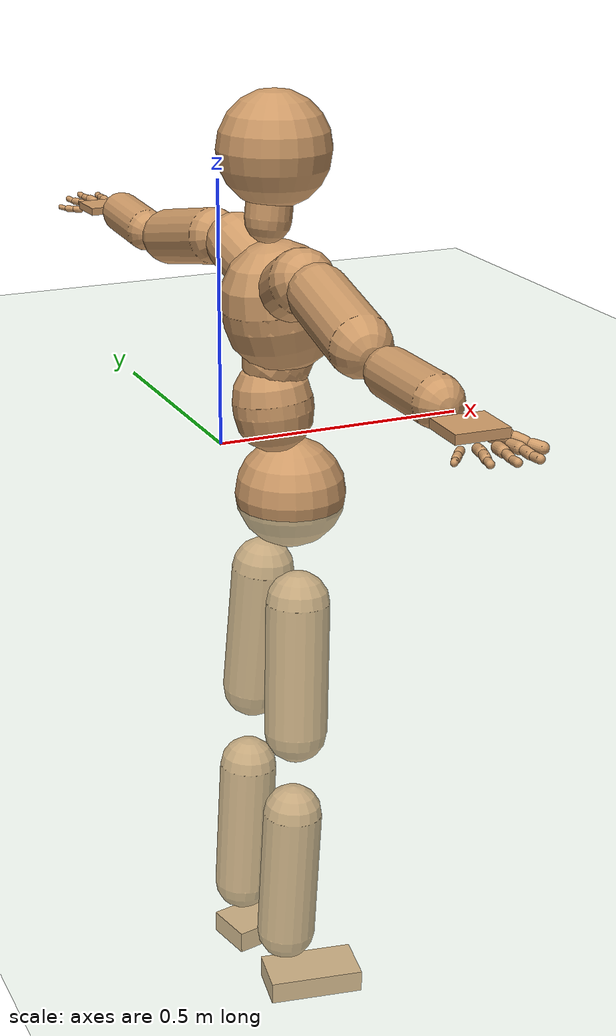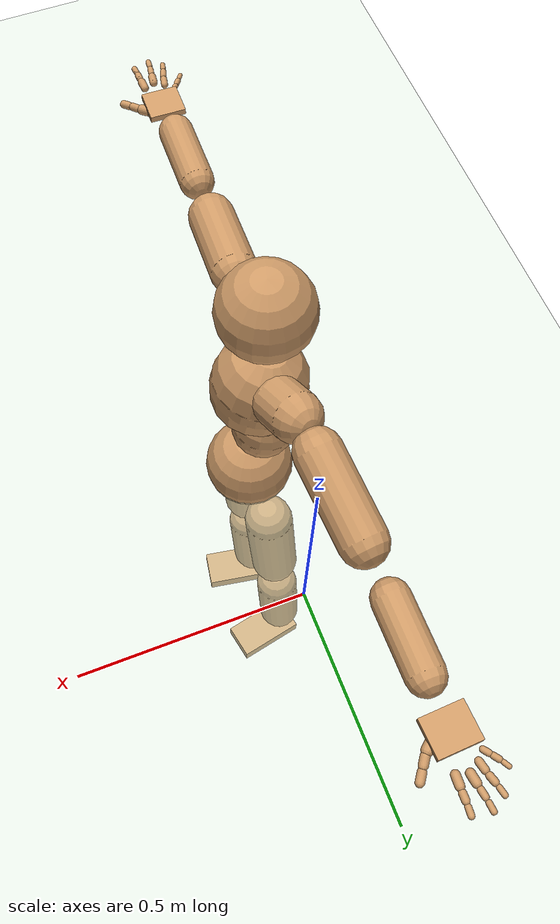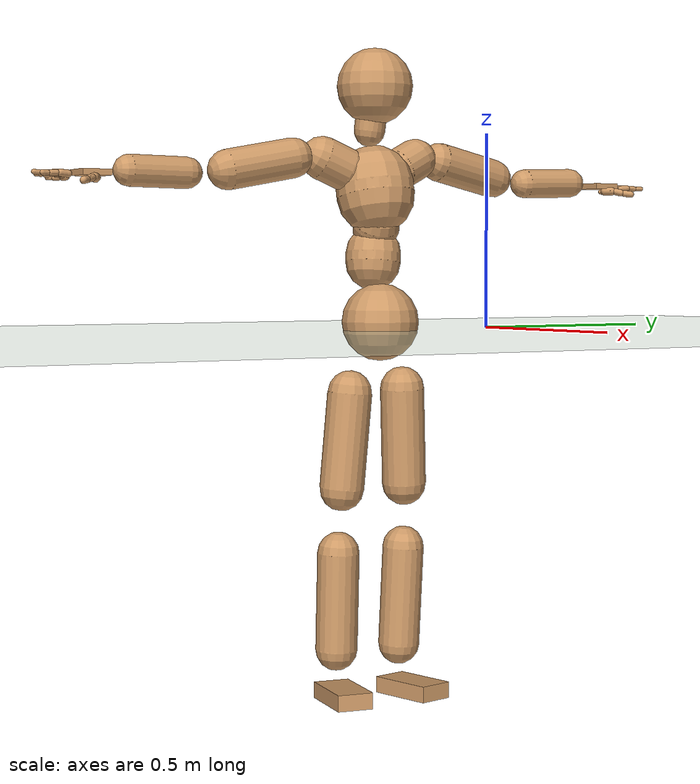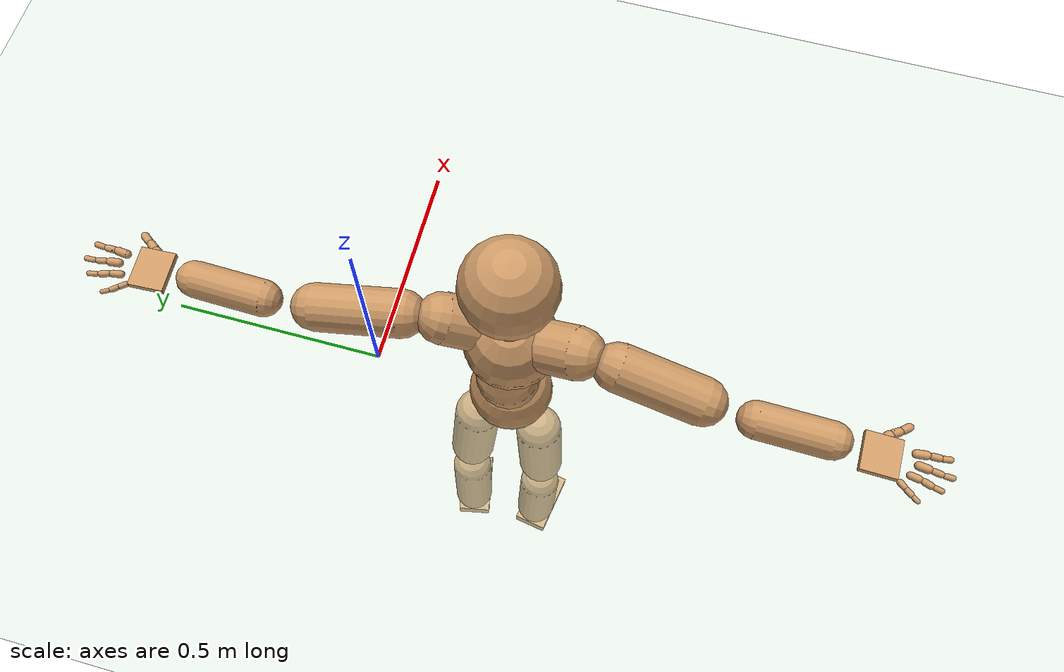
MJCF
<mujoco model="humanoid">
  <compiler coordinate="local" angle="radian"/>
  <default>
    <joint damping="0.0" armature="0.01" stiffness="0.0" limited="true"/>
    <geom conaffinity="1" condim="3" contype="7" margin="0.001" rgba="0.8 0.6 .4 1"/>
  </default>
  <asset>
    <texture type="skybox" builtin="gradient" rgb1=".4 .5 .6" rgb2="0 0 0" width="100" height="100"/>
    <texture builtin="flat" height="1278" mark="cross" markrgb="1 1 1" name="texgeom" random="0.01" rgb1="0.8 0.6 0.4" rgb2="0.8 0.6 0.4" type="cube" width="127"/>
    <texture builtin="checker" height="100" name="texplane" rgb1="0 0 0" rgb2="0.8 0.8 0.8" type="2d" width="100"/>
    <material name="MatPlane" reflectance="0.5" shininess="1" specular="1" texrepeat="60 60" texture="texplane"/>
    <material name="geom" texture="texgeom" texuniform="true"/>
  </asset>
  <worldbody>
    <light cutoff="100" diffuse="1 1 1" dir="-0 0 -1.3" directional="true" exponent="1" pos="0 0 1.3" specular=".1 .1 .1"/>
    <geom conaffinity="1" condim="3" name="floor" pos="0 0 0" rgba="0.8 0.9 0.8 1" size="100 100 .2" type="plane" material="MatPlane"/>
    <body name="Pelvis" pos="0.0004 -0.3257 0.0185">
      <freejoint name="Pelvis"/>
      <geom type="sphere" contype="1" conaffinity="1" density="500" size="0.0971" pos="0.0000 0.0000 0.0000" name="Pelvis"/>
      <body name="L_Hip" pos="-0.0147 0.0725 -0.0896">
        <joint name="L_Hip_x" type="hinge" pos="0 0 0" axis="1 0 0" stiffness="800" damping="80" armature="0.02" range="-180.0000 180.0000"/>
        <joint name="L_Hip_y" type="hinge" pos="0 0 0" axis="0 1 0" stiffness="800" damping="80" armature="0.02" range="-180.0000 180.0000"/>
        <joint name="L_Hip_z" type="hinge" pos="0 0 0" axis="0 0 1" stiffness="800" damping="80" armature="0.02" range="-180.0000 180.0000"/>
        <geom type="capsule" contype="1" conaffinity="1" density="500" fromto="-0.0047 0.0051 -0.0813 -0.0189 0.0203 -0.3252" size="0.0562" name="L_Hip"/>
        <body name="L_Knee" pos="-0.0237 0.0253 -0.4065">
          <joint name="L_Knee_x" type="hinge" pos="0 0 0" axis="1 0 0" stiffness="800" damping="80" armature="0.02" range="-180.0000 180.0000"/>
          <joint name="L_Knee_y" type="hinge" pos="0 0 0" axis="0 1 0" stiffness="800" damping="80" armature="0.02" range="-180.0000 180.0000"/>
          <joint name="L_Knee_z" type="hinge" pos="0 0 0" axis="0 0 1" stiffness="800" damping="80" armature="0.02" range="-180.0000 180.0000"/>
          <geom type="capsule" contype="1" conaffinity="1" density="500" fromto="-0.0049 -0.0013 -0.0844 -0.0197 -0.0051 -0.3375" size="0.053" name="L_Knee"/>
          <body name="L_Ankle" pos="-0.0247 -0.0063 -0.4219">
            <joint name="L_Ankle_x" type="hinge" pos="0 0 0" axis="1 0 0" stiffness="800" damping="80" armature="0.02" range="-180.0000 180.0000"/>
            <joint name="L_Ankle_y" type="hinge" pos="0 0 0" axis="0 1 0" stiffness="800" damping="80" armature="0.02" range="-180.0000 180.0000"/>
            <joint name="L_Ankle_z" type="hinge" pos="0 0 0" axis="0 0 1" stiffness="800" damping="80" armature="0.02" range="-180.0000 180.0000"/>
            <geom type="box" contype="1" conaffinity="1" density="500" pos="0.0555 0.0111 -0.0231" size="0.0862 0.0459 0.0205" quat="0.9952 0.0000 0.0000 0.0983" name="L_Ankle"/>
            <body name="L_Toe" pos="0.1109 0.0221 -0.0462">
              <joint name="L_Toe_x" type="hinge" pos="0 0 0" axis="1 0 0" stiffness="500" damping="50" armature="0.02" range="-180.0000 180.0000"/>
              <joint name="L_Toe_y" type="hinge" pos="0 0 0" axis="0 1 0" stiffness="500" damping="50" armature="0.02" range="-180.0000 180.0000"/>
              <joint name="L_Toe_z" type="hinge" pos="0 0 0" axis="0 0 1" stiffness="500" damping="50" armature="0.02" range="-180.0000 180.0000"/>
              <geom type="box" contype="1" conaffinity="1" density="500" pos="0.0000 0.0000 0.0230" size="0.0009 0.0023 0.001" quat="0.9945 0.0000 0.0000 0.1051" name="L_Toe"/>
            </body>
          </body>
        </body>
      </body>
      <body name="R_Hip" pos="-0.016 -0.0717 -0.0961">
        <joint name="R_Hip_x" type="hinge" pos="0 0 0" axis="1 0 0" stiffness="800" damping="80" armature="0.02" range="-180.0000 180.0000"/>
        <joint name="R_Hip_y" type="hinge" pos="0 0 0" axis="0 1 0" stiffness="800" damping="80" armature="0.02" range="-180.0000 180.0000"/>
        <joint name="R_Hip_z" type="hinge" pos="0 0 0" axis="0 0 1" stiffness="800" damping="80" armature="0.02" range="-180.0000 180.0000"/>
        <geom type="capsule" contype="1" conaffinity="1" density="500" fromto="-0.0036 -0.0058 -0.0805 -0.0143 -0.0231 -0.3219" size="0.0561" name="R_Hip"/>
        <body name="R_Knee" pos="-0.0178 -0.0288 -0.4024">
          <joint name="R_Knee_x" type="hinge" pos="0 0 0" axis="1 0 0" stiffness="800" damping="80" armature="0.02" range="-180.0000 180.0000"/>
          <joint name="R_Knee_y" type="hinge" pos="0 0 0" axis="0 1 0" stiffness="800" damping="80" armature="0.02" range="-180.0000 180.0000"/>
          <joint name="R_Knee_z" type="hinge" pos="0 0 0" axis="0 0 1" stiffness="800" damping="80" armature="0.02" range="-180.0000 180.0000"/>
          <geom type="capsule" contype="1" conaffinity="1" density="500" fromto="-0.0042 0.0003 -0.0826 -0.0167 0.0014 -0.3305" size="0.053" name="R_Knee"/>
          <body name="R_Ankle" pos="-0.0209 0.0017 -0.4131">
            <joint name="R_Ankle_x" type="hinge" pos="0 0 0" axis="1 0 0" stiffness="800" damping="80" armature="0.02" range="-180.0000 180.0000"/>
            <joint name="R_Ankle_y" type="hinge" pos="0 0 0" axis="0 1 0" stiffness="800" damping="80" armature="0.02" range="-180.0000 180.0000"/>
            <joint name="R_Ankle_z" type="hinge" pos="0 0 0" axis="0 0 1" stiffness="800" damping="80" armature="0.02" range="-180.0000 180.0000"/>
            <geom type="box" contype="1" conaffinity="1" density="500" pos="0.0524 -0.0090 -0.0249" size="0.0862 0.0459 0.0205" quat="0.9964 0.0000 0.0000 -0.0851" name="R_Ankle"/>
            <body name="R_Toe" pos="0.1047 -0.018 -0.0498">
              <joint name="R_Toe_x" type="hinge" pos="0 0 0" axis="1 0 0" stiffness="500" damping="50" armature="0.02" range="-180.0000 180.0000"/>
              <joint name="R_Toe_y" type="hinge" pos="0 0 0" axis="0 1 0" stiffness="500" damping="50" armature="0.02" range="-180.0000 180.0000"/>
              <joint name="R_Toe_z" type="hinge" pos="0 0 0" axis="0 0 1" stiffness="500" damping="50" armature="0.02" range="-180.0000 180.0000"/>
              <geom type="box" contype="1" conaffinity="1" density="500" pos="0.0000 0.0000 0.0248" size="0.0009 0.0023 0.001" quat="0.9972 0.0000 0.0000 -0.0745" name="R_Toe"/>
            </body>
          </body>
        </body>
      </body>
      <body name="Torso" pos="-0.0286 -0.0057 0.1042">
        <joint name="Torso_x" type="hinge" pos="0 0 0" axis="1 0 0" stiffness="1000" damping="100" armature="0.02" range="-180.0000 180.0000"/>
        <joint name="Torso_y" type="hinge" pos="0 0 0" axis="0 1 0" stiffness="1000" damping="100" armature="0.02" range="-180.0000 180.0000"/>
        <joint name="Torso_z" type="hinge" pos="0 0 0" axis="0 0 1" stiffness="1000" damping="100" armature="0.02" range="-180.0000 180.0000"/>
        <geom type="capsule" contype="1" conaffinity="1" density="500" fromto="-0.0052 0.0063 0.0690 -0.0034 0.0042 0.0460" size="0.0696" name="Torso"/>
        <body name="Spine" pos="-0.0086 0.0105 0.115">
          <joint name="Spine_x" type="hinge" pos="0 0 0" axis="1 0 0" stiffness="1000" damping="100" armature="0.02" range="-180.0000 180.0000"/>
          <joint name="Spine_y" type="hinge" pos="0 0 0" axis="0 1 0" stiffness="1000" damping="100" armature="0.02" range="-180.0000 180.0000"/>
          <joint name="Spine_z" type="hinge" pos="0 0 0" axis="0 0 1" stiffness="1000" damping="100" armature="0.02" range="-180.0000 180.0000"/>
          <geom type="capsule" contype="1" conaffinity="1" density="500" fromto="0.0178 -0.0033 0.0262 0.0118 -0.0022 0.0175" size="0.0589" name="Spine"/>
          <body name="Chest" pos="0.0296 -0.0055 0.0437">
            <joint name="Chest_x" type="hinge" pos="0 0 0" axis="1 0 0" stiffness="1000" damping="100" armature="0.02" range="-180.0000 180.0000"/>
            <joint name="Chest_y" type="hinge" pos="0 0 0" axis="0 1 0" stiffness="1000" damping="100" armature="0.02" range="-180.0000 180.0000"/>
            <joint name="Chest_z" type="hinge" pos="0 0 0" axis="0 0 1" stiffness="1000" damping="100" armature="0.02" range="-180.0000 180.0000"/>
            <geom type="capsule" contype="1" conaffinity="1" density="500" fromto="-0.0160 -0.0017 0.0819 -0.0107 -0.0012 0.0546" size="0.0987" name="Chest"/>
            <body name="Neck" pos="-0.0392 -0.006 0.1893">
              <joint name="Neck_x" type="hinge" pos="0 0 0" axis="1 0 0" stiffness="500" damping="50" armature="0.02" range="-180.0000 180.0000"/>
              <joint name="Neck_y" type="hinge" pos="0 0 0" axis="0 1 0" stiffness="500" damping="50" armature="0.02" range="-180.0000 180.0000"/>
              <joint name="Neck_z" type="hinge" pos="0 0 0" axis="0 0 1" stiffness="500" damping="50" armature="0.02" range="-180.0000 180.0000"/>
              <geom type="capsule" contype="1" conaffinity="1" density="500" fromto="0.0035 0.0018 0.0277 0.0142 0.0072 0.1108" size="0.0393" name="Neck"/>
              <body name="Head" pos="0.0177 0.009 0.1385">
                <joint name="Head_x" type="hinge" pos="0 0 0" axis="1 0 0" stiffness="500" damping="50" armature="0.02" range="-180.0000 180.0000"/>
                <joint name="Head_y" type="hinge" pos="0 0 0" axis="0 1 0" stiffness="500" damping="50" armature="0.02" range="-180.0000 180.0000"/>
                <joint name="Head_z" type="hinge" pos="0 0 0" axis="0 0 1" stiffness="500" damping="50" armature="0.02" range="-180.0000 180.0000"/>
                <geom type="sphere" contype="1" conaffinity="1" density="500" size="0.0956" pos="0.0000 0.0000 0.0000" name="Head"/>
              </body>
            </body>
            <body name="L_Thorax" pos="-0.0173 0.0542 0.1121">
              <joint name="L_Thorax_x" type="hinge" pos="0 0 0" axis="1 0 0" stiffness="500" damping="50" armature="0.02" range="-180.0000 180.0000"/>
              <joint name="L_Thorax_y" type="hinge" pos="0 0 0" axis="0 1 0" stiffness="500" damping="50" armature="0.02" range="-180.0000 180.0000"/>
              <joint name="L_Thorax_z" type="hinge" pos="0 0 0" axis="0 0 1" stiffness="500" damping="50" armature="0.02" range="-180.0000 180.0000"/>
              <geom type="capsule" contype="1" conaffinity="1" density="500" fromto="-0.0045 0.0194 0.0091 -0.0180 0.0778 0.0365" size="0.0532" name="L_Thorax"/>
              <body name="L_Shoulder" pos="-0.0225 0.0972 0.0456">
                <joint name="L_Shoulder_x" type="hinge" pos="0 0 0" axis="1 0 0" stiffness="500" damping="50" armature="0.02" range="-180.0000 180.0000"/>
                <joint name="L_Shoulder_y" type="hinge" pos="0 0 0" axis="0 1 0" stiffness="500" damping="50" armature="0.02" range="-180.0000 180.0000"/>
                <joint name="L_Shoulder_z" type="hinge" pos="0 0 0" axis="0 0 1" stiffness="500" damping="50" armature="0.02" range="-180.0000 180.0000"/>
                <geom type="capsule" contype="1" conaffinity="1" density="500" fromto="-0.0056 0.0602 -0.0123 -0.0224 0.2409 -0.0494" size="0.0493" name="L_Shoulder"/>
                <body name="L_Elbow" pos="-0.028 0.3012 -0.0617">
                  <joint name="L_Elbow_x" type="hinge" pos="0 0 0" axis="1 0 0" stiffness="500" damping="50" armature="0.02" range="-720.0000 720.0000"/>
                  <joint name="L_Elbow_y" type="hinge" pos="0 0 0" axis="0 1 0" stiffness="500" damping="50" armature="0.02" range="-720.0000 720.0000"/>
                  <joint name="L_Elbow_z" type="hinge" pos="0 0 0" axis="0 0 1" stiffness="500" damping="50" armature="0.02" range="-720.0000 720.0000"/>
                  <geom type="capsule" contype="1" conaffinity="1" density="500" fromto="0.0007 0.0492 0.0016 0.0026 0.1969 0.0063" size="0.0382" name="L_Elbow"/>
                  <body name="L_Wrist" pos="0.0033 0.2461 0.0078">
                    <joint name="L_Wrist_x" type="hinge" pos="0 0 0" axis="1 0 0" stiffness="300" damping="30" armature="0.02" range="-180.0000 180.0000"/>
                    <joint name="L_Wrist_y" type="hinge" pos="0 0 0" axis="0 1 0" stiffness="300" damping="30" armature="0.02" range="-180.0000 180.0000"/>
                    <joint name="L_Wrist_z" type="hinge" pos="0 0 0" axis="0 0 1" stiffness="300" damping="30" armature="0.02" range="-180.0000 180.0000"/>
                    <geom type="box" contype="1" conaffinity="1" density="500" pos="-0.0020 0.0460 -0.0086" size="0.0371 0.0436 0.007" quat="0.7221 0.0000 0.0000 -0.6918" name="L_Wrist"/>
                    <body name="L_Index1" pos="0.0199 0.1074 -0.0151">
                      <joint name="L_Index1_x" type="hinge" pos="0 0 0" axis="1 0 0" stiffness="100" damping="10" armature="0.02" range="-180.0000 180.0000"/>
                      <joint name="L_Index1_y" type="hinge" pos="0 0 0" axis="0 1 0" stiffness="100" damping="10" armature="0.02" range="-180.0000 180.0000"/>
                      <joint name="L_Index1_z" type="hinge" pos="0 0 0" axis="0 0 1" stiffness="100" damping="10" armature="0.02" range="-180.0000 180.0000"/>
                      <geom type="capsule" contype="1" conaffinity="1" density="500" fromto="0.0005 0.0063 0.0006 0.0020 0.0253 0.0023" size="0.0088" name="L_Index1"/>
                      <body name="L_Index2" pos="0.0025 0.0316 0.0028">
                        <joint name="L_Index2_x" type="hinge" pos="0 0 0" axis="1 0 0" stiffness="100" damping="10" armature="0.02" range="-180.0000 180.0000"/>
                        <joint name="L_Index2_y" type="hinge" pos="0 0 0" axis="0 1 0" stiffness="100" damping="10" armature="0.02" range="-180.0000 180.0000"/>
                        <joint name="L_Index2_z" type="hinge" pos="0 0 0" axis="0 0 1" stiffness="100" damping="10" armature="0.02" range="-180.0000 180.0000"/>
                        <geom type="capsule" contype="1" conaffinity="1" density="500" fromto="0.0001 0.0045 -0.0003 0.0003 0.0179 -0.0011" size="0.0073" name="L_Index2"/>
                        <body name="L_Index3" pos="0.0004 0.0224 -0.0013">
                          <joint name="L_Index3_x" type="hinge" pos="0 0 0" axis="1 0 0" stiffness="100" damping="10" armature="0.02" range="-180.0000 180.0000"/>
                          <joint name="L_Index3_y" type="hinge" pos="0 0 0" axis="0 1 0" stiffness="100" damping="10" armature="0.02" range="-180.0000 180.0000"/>
                          <joint name="L_Index3_z" type="hinge" pos="0 0 0" axis="0 0 1" stiffness="100" damping="10" armature="0.02" range="-180.0000 180.0000"/>
                          <geom type="capsule" contype="1" conaffinity="1" density="500" fromto="0.0005 0.0049 0.0001 0.0019 0.0195 0.0005" size="0.0062" name="L_Index3"/>
                        </body>
                      </body>
                    </body>
                    <body name="L_Middle1" pos="-0.0024 0.1144 -0.0126">
                      <joint name="L_Middle1_x" type="hinge" pos="0 0 0" axis="1 0 0" stiffness="100" damping="10" armature="0.02" range="-180.0000 180.0000"/>
                      <joint name="L_Middle1_y" type="hinge" pos="0 0 0" axis="0 1 0" stiffness="100" damping="10" armature="0.02" range="-180.0000 180.0000"/>
                      <joint name="L_Middle1_z" type="hinge" pos="0 0 0" axis="0 0 1" stiffness="100" damping="10" armature="0.02" range="-180.0000 180.0000"/>
                      <geom type="capsule" contype="1" conaffinity="1" density="500" fromto="-0.0008 0.0060 0.0003 -0.0032 0.0239 0.0012" size="0.0088" name="L_Middle1"/>
                      <body name="L_Middle2" pos="-0.004 0.0299 0.0015">
                        <joint name="L_Middle2_x" type="hinge" pos="0 0 0" axis="1 0 0" stiffness="100" damping="10" armature="0.02" range="-180.0000 180.0000"/>
                        <joint name="L_Middle2_y" type="hinge" pos="0 0 0" axis="0 1 0" stiffness="100" damping="10" armature="0.02" range="-180.0000 180.0000"/>
                        <joint name="L_Middle2_z" type="hinge" pos="0 0 0" axis="0 0 1" stiffness="100" damping="10" armature="0.02" range="-180.0000 180.0000"/>
                        <geom type="capsule" contype="1" conaffinity="1" density="500" fromto="-0.0008 0.0047 -0.0001 -0.0030 0.0186 -0.0004" size="0.0066" name="L_Middle2"/>
                        <body name="L_Middle3" pos="-0.0038 0.0233 -0.0006">
                          <joint name="L_Middle3_x" type="hinge" pos="0 0 0" axis="1 0 0" stiffness="100" damping="10" armature="0.02" range="-180.0000 180.0000"/>
                          <joint name="L_Middle3_y" type="hinge" pos="0 0 0" axis="0 1 0" stiffness="100" damping="10" armature="0.02" range="-180.0000 180.0000"/>
                          <joint name="L_Middle3_z" type="hinge" pos="0 0 0" axis="0 0 1" stiffness="100" damping="10" armature="0.02" range="-180.0000 180.0000"/>
                          <geom type="capsule" contype="1" conaffinity="1" density="500" fromto="-0.0004 0.0051 0.0003 -0.0014 0.0202 0.0012" size="0.0058" name="L_Middle3"/>
                        </body>
                      </body>
                    </body>
                    <body name="L_Pinky1" pos="-0.0391 0.0893 -0.0205">
                      <joint name="L_Pinky1_x" type="hinge" pos="0 0 0" axis="1 0 0" stiffness="100" damping="10" armature="0.02" range="-180.0000 180.0000"/>
                      <joint name="L_Pinky1_y" type="hinge" pos="0 0 0" axis="0 1 0" stiffness="100" damping="10" armature="0.02" range="-180.0000 180.0000"/>
                      <joint name="L_Pinky1_z" type="hinge" pos="0 0 0" axis="0 0 1" stiffness="100" damping="10" armature="0.02" range="-180.0000 180.0000"/>
                      <geom type="capsule" contype="1" conaffinity="1" density="500" fromto="-0.0024 0.0029 -0.0001 -0.0095 0.0118 -0.0002" size="0.0063" name="L_Pinky1"/>
                      <body name="L_Pinky2" pos="-0.0118 0.0147 -0.0003">
                        <joint name="L_Pinky2_x" type="hinge" pos="0 0 0" axis="1 0 0" stiffness="100" damping="10" armature="0.02" range="-180.0000 180.0000"/>
                        <joint name="L_Pinky2_y" type="hinge" pos="0 0 0" axis="0 1 0" stiffness="100" damping="10" armature="0.02" range="-180.0000 180.0000"/>
                        <joint name="L_Pinky2_z" type="hinge" pos="0 0 0" axis="0 0 1" stiffness="100" damping="10" armature="0.02" range="-180.0000 180.0000"/>
                        <geom type="capsule" contype="1" conaffinity="1" density="500" fromto="-0.0023 0.0030 -0.0002 -0.0092 0.0119 -0.0007" size="0.0062" name="L_Pinky2"/>
                        <body name="L_Pinky3" pos="-0.0115 0.0148 -0.0008">
                          <joint name="L_Pinky3_x" type="hinge" pos="0 0 0" axis="1 0 0" stiffness="100" damping="10" armature="0.02" range="-180.0000 180.0000"/>
                          <joint name="L_Pinky3_y" type="hinge" pos="0 0 0" axis="0 1 0" stiffness="100" damping="10" armature="0.02" range="-180.0000 180.0000"/>
                          <joint name="L_Pinky3_z" type="hinge" pos="0 0 0" axis="0 0 1" stiffness="100" damping="10" armature="0.02" range="-180.0000 180.0000"/>
                          <geom type="capsule" contype="1" conaffinity="1" density="500" fromto="-0.0019 0.0034 0.0002 -0.0076 0.0135 0.0009" size="0.0048" name="L_Pinky3"/>
                        </body>
                      </body>
                    </body>
                    <body name="L_Ring1" pos="-0.0242 0.1024 -0.0154">
                      <joint name="L_Ring1_x" type="hinge" pos="0 0 0" axis="1 0 0" stiffness="100" damping="10" armature="0.02" range="-180.0000 180.0000"/>
                      <joint name="L_Ring1_y" type="hinge" pos="0 0 0" axis="0 1 0" stiffness="100" damping="10" armature="0.02" range="-180.0000 180.0000"/>
                      <joint name="L_Ring1_z" type="hinge" pos="0 0 0" axis="0 0 1" stiffness="100" damping="10" armature="0.02" range="-180.0000 180.0000"/>
                      <geom type="capsule" contype="1" conaffinity="1" density="500" fromto="-0.0011 0.0054 0.0003 -0.0044 0.0217 0.0013" size="0.0076" name="L_Ring1"/>
                      <body name="L_Ring2" pos="-0.0055 0.0271 0.0017">
                        <joint name="L_Ring2_x" type="hinge" pos="0 0 0" axis="1 0 0" stiffness="100" damping="10" armature="0.02" range="-180.0000 180.0000"/>
                        <joint name="L_Ring2_y" type="hinge" pos="0 0 0" axis="0 1 0" stiffness="100" damping="10" armature="0.02" range="-180.0000 180.0000"/>
                        <joint name="L_Ring2_z" type="hinge" pos="0 0 0" axis="0 0 1" stiffness="100" damping="10" armature="0.02" range="-180.0000 180.0000"/>
                        <geom type="capsule" contype="1" conaffinity="1" density="500" fromto="-0.0014 0.0045 -0.0002 -0.0057 0.0179 -0.0008" size="0.0071" name="L_Ring2"/>
                        <body name="L_Ring3" pos="-0.0071 0.0223 -0.001">
                          <joint name="L_Ring3_x" type="hinge" pos="0 0 0" axis="1 0 0" stiffness="100" damping="10" armature="0.02" range="-180.0000 180.0000"/>
                          <joint name="L_Ring3_y" type="hinge" pos="0 0 0" axis="0 1 0" stiffness="100" damping="10" armature="0.02" range="-180.0000 180.0000"/>
                          <joint name="L_Ring3_z" type="hinge" pos="0 0 0" axis="0 0 1" stiffness="100" damping="10" armature="0.02" range="-180.0000 180.0000"/>
                          <geom type="capsule" contype="1" conaffinity="1" density="500" fromto="-0.0010 0.0049 0.0002 -0.0041 0.0195 0.0008" size="0.0056" name="L_Ring3"/>
                        </body>
                      </body>
                    </body>
                    <body name="L_Thumb1" pos="0.0261 0.0466 -0.0224">
                      <joint name="L_Thumb1_x" type="hinge" pos="0 0 0" axis="1 0 0" stiffness="100" damping="10" armature="0.02" range="-180.0000 180.0000"/>
                      <joint name="L_Thumb1_y" type="hinge" pos="0 0 0" axis="0 1 0" stiffness="100" damping="10" armature="0.02" range="-180.0000 180.0000"/>
                      <joint name="L_Thumb1_z" type="hinge" pos="0 0 0" axis="0 0 1" stiffness="100" damping="10" armature="0.02" range="-180.0000 180.0000"/>
                      <geom type="capsule" contype="1" conaffinity="1" density="500" fromto="0.0047 0.0035 0.0000 0.0186 0.0142 0.0001" size="0.0114" name="L_Thumb1"/>
                      <body name="L_Thumb2" pos="0.0233 0.0177 0.0002">
                        <joint name="L_Thumb2_x" type="hinge" pos="0 0 0" axis="1 0 0" stiffness="100" damping="10" armature="0.02" range="-180.0000 180.0000"/>
                        <joint name="L_Thumb2_y" type="hinge" pos="0 0 0" axis="0 1 0" stiffness="100" damping="10" armature="0.02" range="-180.0000 180.0000"/>
                        <joint name="L_Thumb2_z" type="hinge" pos="0 0 0" axis="0 0 1" stiffness="100" damping="10" armature="0.02" range="-180.0000 180.0000"/>
                        <geom type="capsule" contype="1" conaffinity="1" density="500" fromto="0.0029 0.0041 -0.0012 0.0114 0.0164 -0.0047" size="0.009" name="L_Thumb2"/>
                        <body name="L_Thumb3" pos="0.0143 0.0205 -0.0058">
                          <joint name="L_Thumb3_x" type="hinge" pos="0 0 0" axis="1 0 0" stiffness="100" damping="10" armature="0.02" range="-180.0000 180.0000"/>
                          <joint name="L_Thumb3_y" type="hinge" pos="0 0 0" axis="0 1 0" stiffness="100" damping="10" armature="0.02" range="-180.0000 180.0000"/>
                          <joint name="L_Thumb3_z" type="hinge" pos="0 0 0" axis="0 0 1" stiffness="100" damping="10" armature="0.02" range="-180.0000 180.0000"/>
                          <geom type="capsule" contype="1" conaffinity="1" density="500" fromto="0.0033 0.0045 -0.0008 0.0130 0.0180 -0.0031" size="0.0086" name="L_Thumb3"/>
                        </body>
                      </body>
                    </body>
                  </body>
                </body>
              </body>
            </body>
            <body name="R_Thorax" pos="-0.0237 -0.057 0.1083">
              <joint name="R_Thorax_x" type="hinge" pos="0 0 0" axis="1 0 0" stiffness="500" damping="50" armature="0.02" range="-180.0000 180.0000"/>
              <joint name="R_Thorax_y" type="hinge" pos="0 0 0" axis="0 1 0" stiffness="500" damping="50" armature="0.02" range="-180.0000 180.0000"/>
              <joint name="R_Thorax_z" type="hinge" pos="0 0 0" axis="0 0 1" stiffness="500" damping="50" armature="0.02" range="-180.0000 180.0000"/>
              <geom type="capsule" contype="1" conaffinity="1" density="500" fromto="-0.0031 -0.0211 0.0093 -0.0124 -0.0844 0.0370" size="0.0543" name="R_Thorax"/>
              <body name="R_Shoulder" pos="-0.0155 -0.1055 0.0463">
                <joint name="R_Shoulder_x" type="hinge" pos="0 0 0" axis="1 0 0" stiffness="500" damping="50" armature="0.02" range="-180.0000 180.0000"/>
                <joint name="R_Shoulder_y" type="hinge" pos="0 0 0" axis="0 1 0" stiffness="500" damping="50" armature="0.02" range="-180.0000 180.0000"/>
                <joint name="R_Shoulder_z" type="hinge" pos="0 0 0" axis="0 0 1" stiffness="500" damping="50" armature="0.02" range="-180.0000 180.0000"/>
                <geom type="capsule" contype="1" conaffinity="1" density="500" fromto="-0.0042 -0.0581 -0.0110 -0.0169 -0.2323 -0.0440" size="0.0497" name="R_Shoulder"/>
                <body name="R_Elbow" pos="-0.0211 -0.2903 -0.055">
                  <joint name="R_Elbow_x" type="hinge" pos="0 0 0" axis="1 0 0" stiffness="500" damping="50" armature="0.02" range="-720.0000 720.0000"/>
                  <joint name="R_Elbow_y" type="hinge" pos="0 0 0" axis="0 1 0" stiffness="500" damping="50" armature="0.02" range="-720.0000 720.0000"/>
                  <joint name="R_Elbow_z" type="hinge" pos="0 0 0" axis="0 0 1" stiffness="500" damping="50" armature="0.02" range="-720.0000 720.0000"/>
                  <geom type="capsule" contype="1" conaffinity="1" density="500" fromto="-0.0011 -0.0494 0.0007 -0.0046 -0.1976 0.0029" size="0.0384" name="R_Elbow"/>
                  <body name="R_Wrist" pos="-0.0057 -0.247 0.0036">
                    <joint name="R_Wrist_x" type="hinge" pos="0 0 0" axis="1 0 0" stiffness="300" damping="30" armature="0.02" range="-180.0000 180.0000"/>
                    <joint name="R_Wrist_y" type="hinge" pos="0 0 0" axis="0 1 0" stiffness="300" damping="30" armature="0.02" range="-180.0000 180.0000"/>
                    <joint name="R_Wrist_z" type="hinge" pos="0 0 0" axis="0 0 1" stiffness="300" damping="30" armature="0.02" range="-180.0000 180.0000"/>
                    <geom type="box" contype="1" conaffinity="1" density="500" pos="-0.0012 -0.0453 -0.0083" size="0.0371 0.0405 0.0072" quat="0.7168 0.0000 0.0000 0.6973" name="R_Wrist"/>
                    <body name="R_Index1" pos="0.0213 -0.106 -0.0144">
                      <joint name="R_Index1_x" type="hinge" pos="0 0 0" axis="1 0 0" stiffness="100" damping="10" armature="0.02" range="-180.0000 180.0000"/>
                      <joint name="R_Index1_y" type="hinge" pos="0 0 0" axis="0 1 0" stiffness="100" damping="10" armature="0.02" range="-180.0000 180.0000"/>
                      <joint name="R_Index1_z" type="hinge" pos="0 0 0" axis="0 0 1" stiffness="100" damping="10" armature="0.02" range="-180.0000 180.0000"/>
                      <geom type="capsule" contype="1" conaffinity="1" density="500" fromto="0.0005 -0.0063 0.0006 0.0020 -0.0253 0.0023" size="0.0088" name="R_Index1"/>
                      <body name="R_Index2" pos="0.0025 -0.0316 0.0028">
                        <joint name="R_Index2_x" type="hinge" pos="0 0 0" axis="1 0 0" stiffness="100" damping="10" armature="0.02" range="-180.0000 180.0000"/>
                        <joint name="R_Index2_y" type="hinge" pos="0 0 0" axis="0 1 0" stiffness="100" damping="10" armature="0.02" range="-180.0000 180.0000"/>
                        <joint name="R_Index2_z" type="hinge" pos="0 0 0" axis="0 0 1" stiffness="100" damping="10" armature="0.02" range="-180.0000 180.0000"/>
                        <geom type="capsule" contype="1" conaffinity="1" density="500" fromto="0.0001 -0.0045 -0.0003 0.0003 -0.0179 -0.0011" size="0.0073" name="R_Index2"/>
                        <body name="R_Index3" pos="0.0004 -0.0224 -0.0013">
                          <joint name="R_Index3_x" type="hinge" pos="0 0 0" axis="1 0 0" stiffness="100" damping="10" armature="0.02" range="-180.0000 180.0000"/>
                          <joint name="R_Index3_y" type="hinge" pos="0 0 0" axis="0 1 0" stiffness="100" damping="10" armature="0.02" range="-180.0000 180.0000"/>
                          <joint name="R_Index3_z" type="hinge" pos="0 0 0" axis="0 0 1" stiffness="100" damping="10" armature="0.02" range="-180.0000 180.0000"/>
                          <geom type="capsule" contype="1" conaffinity="1" density="500" fromto="0.0005 -0.0041 0.0001 0.0019 -0.0163 0.0005" size="0.0065" name="R_Index3"/>
                        </body>
                      </body>
                    </body>
                    <body name="R_Middle1" pos="-0.0009 -0.113 -0.0119">
                      <joint name="R_Middle1_x" type="hinge" pos="0 0 0" axis="1 0 0" stiffness="100" damping="10" armature="0.02" range="-180.0000 180.0000"/>
                      <joint name="R_Middle1_y" type="hinge" pos="0 0 0" axis="0 1 0" stiffness="100" damping="10" armature="0.02" range="-180.0000 180.0000"/>
                      <joint name="R_Middle1_z" type="hinge" pos="0 0 0" axis="0 0 1" stiffness="100" damping="10" armature="0.02" range="-180.0000 180.0000"/>
                      <geom type="capsule" contype="1" conaffinity="1" density="500" fromto="-0.0008 -0.0060 0.0003 -0.0032 -0.0239 0.0012" size="0.0088" name="R_Middle1"/>
                      <body name="R_Middle2" pos="-0.004 -0.0299 0.0015">
                        <joint name="R_Middle2_x" type="hinge" pos="0 0 0" axis="1 0 0" stiffness="100" damping="10" armature="0.02" range="-180.0000 180.0000"/>
                        <joint name="R_Middle2_y" type="hinge" pos="0 0 0" axis="0 1 0" stiffness="100" damping="10" armature="0.02" range="-180.0000 180.0000"/>
                        <joint name="R_Middle2_z" type="hinge" pos="0 0 0" axis="0 0 1" stiffness="100" damping="10" armature="0.02" range="-180.0000 180.0000"/>
                        <geom type="capsule" contype="1" conaffinity="1" density="500" fromto="-0.0008 -0.0047 -0.0001 -0.0030 -0.0186 -0.0004" size="0.0066" name="R_Middle2"/>
                        <body name="R_Middle3" pos="-0.0038 -0.0233 -0.0006">
                          <joint name="R_Middle3_x" type="hinge" pos="0 0 0" axis="1 0 0" stiffness="100" damping="10" armature="0.02" range="-180.0000 180.0000"/>
                          <joint name="R_Middle3_y" type="hinge" pos="0 0 0" axis="0 1 0" stiffness="100" damping="10" armature="0.02" range="-180.0000 180.0000"/>
                          <joint name="R_Middle3_z" type="hinge" pos="0 0 0" axis="0 0 1" stiffness="100" damping="10" armature="0.02" range="-180.0000 180.0000"/>
                          <geom type="capsule" contype="1" conaffinity="1" density="500" fromto="-0.0004 -0.0043 0.0003 -0.0014 -0.0170 0.0012" size="0.0061" name="R_Middle3"/>
                        </body>
                      </body>
                    </body>
                    <body name="R_Pinky1" pos="-0.0377 -0.0879 -0.0198">
                      <joint name="R_Pinky1_x" type="hinge" pos="0 0 0" axis="1 0 0" stiffness="100" damping="10" armature="0.02" range="-180.0000 180.0000"/>
                      <joint name="R_Pinky1_y" type="hinge" pos="0 0 0" axis="0 1 0" stiffness="100" damping="10" armature="0.02" range="-180.0000 180.0000"/>
                      <joint name="R_Pinky1_z" type="hinge" pos="0 0 0" axis="0 0 1" stiffness="100" damping="10" armature="0.02" range="-180.0000 180.0000"/>
                      <geom type="capsule" contype="1" conaffinity="1" density="500" fromto="-0.0024 -0.0029 -0.0001 -0.0095 -0.0118 -0.0002" size="0.0063" name="R_Pinky1"/>
                      <body name="R_Pinky2" pos="-0.0118 -0.0147 -0.0003">
                        <joint name="R_Pinky2_x" type="hinge" pos="0 0 0" axis="1 0 0" stiffness="100" damping="10" armature="0.02" range="-180.0000 180.0000"/>
                        <joint name="R_Pinky2_y" type="hinge" pos="0 0 0" axis="0 1 0" stiffness="100" damping="10" armature="0.02" range="-180.0000 180.0000"/>
                        <joint name="R_Pinky2_z" type="hinge" pos="0 0 0" axis="0 0 1" stiffness="100" damping="10" armature="0.02" range="-180.0000 180.0000"/>
                        <geom type="capsule" contype="1" conaffinity="1" density="500" fromto="-0.0023 -0.0030 -0.0002 -0.0092 -0.0119 -0.0007" size="0.0062" name="R_Pinky2"/>
                        <body name="R_Pinky3" pos="-0.0115 -0.0148 -0.0008">
                          <joint name="R_Pinky3_x" type="hinge" pos="0 0 0" axis="1 0 0" stiffness="100" damping="10" armature="0.02" range="-180.0000 180.0000"/>
                          <joint name="R_Pinky3_y" type="hinge" pos="0 0 0" axis="0 1 0" stiffness="100" damping="10" armature="0.02" range="-180.0000 180.0000"/>
                          <joint name="R_Pinky3_z" type="hinge" pos="0 0 0" axis="0 0 1" stiffness="100" damping="10" armature="0.02" range="-180.0000 180.0000"/>
                          <geom type="capsule" contype="1" conaffinity="1" density="500" fromto="-0.0019 -0.0026 0.0002 -0.0076 -0.0103 0.0009" size="0.0051" name="R_Pinky3"/>
                        </body>
                      </body>
                    </body>
                    <body name="R_Ring1" pos="-0.0227 -0.101 -0.0147">
                      <joint name="R_Ring1_x" type="hinge" pos="0 0 0" axis="1 0 0" stiffness="100" damping="10" armature="0.02" range="-180.0000 180.0000"/>
                      <joint name="R_Ring1_y" type="hinge" pos="0 0 0" axis="0 1 0" stiffness="100" damping="10" armature="0.02" range="-180.0000 180.0000"/>
                      <joint name="R_Ring1_z" type="hinge" pos="0 0 0" axis="0 0 1" stiffness="100" damping="10" armature="0.02" range="-180.0000 180.0000"/>
                      <geom type="capsule" contype="1" conaffinity="1" density="500" fromto="-0.0011 -0.0054 0.0003 -0.0044 -0.0217 0.0013" size="0.0076" name="R_Ring1"/>
                      <body name="R_Ring2" pos="-0.0055 -0.0271 0.0017">
                        <joint name="R_Ring2_x" type="hinge" pos="0 0 0" axis="1 0 0" stiffness="100" damping="10" armature="0.02" range="-180.0000 180.0000"/>
                        <joint name="R_Ring2_y" type="hinge" pos="0 0 0" axis="0 1 0" stiffness="100" damping="10" armature="0.02" range="-180.0000 180.0000"/>
                        <joint name="R_Ring2_z" type="hinge" pos="0 0 0" axis="0 0 1" stiffness="100" damping="10" armature="0.02" range="-180.0000 180.0000"/>
                        <geom type="capsule" contype="1" conaffinity="1" density="500" fromto="-0.0014 -0.0045 -0.0002 -0.0057 -0.0179 -0.0008" size="0.0071" name="R_Ring2"/>
                        <body name="R_Ring3" pos="-0.0071 -0.0223 -0.001">
                          <joint name="R_Ring3_x" type="hinge" pos="0 0 0" axis="1 0 0" stiffness="100" damping="10" armature="0.02" range="-180.0000 180.0000"/>
                          <joint name="R_Ring3_y" type="hinge" pos="0 0 0" axis="0 1 0" stiffness="100" damping="10" armature="0.02" range="-180.0000 180.0000"/>
                          <joint name="R_Ring3_z" type="hinge" pos="0 0 0" axis="0 0 1" stiffness="100" damping="10" armature="0.02" range="-180.0000 180.0000"/>
                          <geom type="capsule" contype="1" conaffinity="1" density="500" fromto="-0.0010 -0.0041 0.0002 -0.0041 -0.0163 0.0008" size="0.0058" name="R_Ring3"/>
                        </body>
                      </body>
                    </body>
                    <body name="R_Thumb1" pos="0.0276 -0.0451 -0.0217">
                      <joint name="R_Thumb1_x" type="hinge" pos="0 0 0" axis="1 0 0" stiffness="100" damping="10" armature="0.02" range="-180.0000 180.0000"/>
                      <joint name="R_Thumb1_y" type="hinge" pos="0 0 0" axis="0 1 0" stiffness="100" damping="10" armature="0.02" range="-180.0000 180.0000"/>
                      <joint name="R_Thumb1_z" type="hinge" pos="0 0 0" axis="0 0 1" stiffness="100" damping="10" armature="0.02" range="-180.0000 180.0000"/>
                      <geom type="capsule" contype="1" conaffinity="1" density="500" fromto="0.0047 -0.0035 0.0000 0.0186 -0.0142 0.0001" size="0.0114" name="R_Thumb1"/>
                      <body name="R_Thumb2" pos="0.0233 -0.0177 0.0002">
                        <joint name="R_Thumb2_x" type="hinge" pos="0 0 0" axis="1 0 0" stiffness="100" damping="10" armature="0.02" range="-180.0000 180.0000"/>
                        <joint name="R_Thumb2_y" type="hinge" pos="0 0 0" axis="0 1 0" stiffness="100" damping="10" armature="0.02" range="-180.0000 180.0000"/>
                        <joint name="R_Thumb2_z" type="hinge" pos="0 0 0" axis="0 0 1" stiffness="100" damping="10" armature="0.02" range="-180.0000 180.0000"/>
                        <geom type="capsule" contype="1" conaffinity="1" density="500" fromto="0.0029 -0.0041 -0.0012 0.0114 -0.0164 -0.0047" size="0.009" name="R_Thumb2"/>
                        <body name="R_Thumb3" pos="0.0143 -0.0205 -0.0058">
                          <joint name="R_Thumb3_x" type="hinge" pos="0 0 0" axis="1 0 0" stiffness="100" damping="10" armature="0.02" range="-180.0000 180.0000"/>
                          <joint name="R_Thumb3_y" type="hinge" pos="0 0 0" axis="0 1 0" stiffness="100" damping="10" armature="0.02" range="-180.0000 180.0000"/>
                          <joint name="R_Thumb3_z" type="hinge" pos="0 0 0" axis="0 0 1" stiffness="100" damping="10" armature="0.02" range="-180.0000 180.0000"/>
                          <geom type="capsule" contype="1" conaffinity="1" density="500" fromto="0.0033 -0.0037 -0.0008 0.0130 -0.0148 -0.0031" size="0.0088" name="R_Thumb3"/>
                        </body>
                      </body>
                    </body>
                  </body>
                </body>
              </body>
            </body>
          </body>
        </body>
      </body>
    </body>
  </worldbody>
  <actuator>
    <motor name="L_Hip_x" joint="L_Hip_x" gear="500"/>
    <motor name="L_Hip_y" joint="L_Hip_y" gear="500"/>
    <motor name="L_Hip_z" joint="L_Hip_z" gear="500"/>
    <motor name="L_Knee_x" joint="L_Knee_x" gear="500"/>
    <motor name="L_Knee_y" joint="L_Knee_y" gear="500"/>
    <motor name="L_Knee_z" joint="L_Knee_z" gear="500"/>
    <motor name="L_Ankle_x" joint="L_Ankle_x" gear="500"/>
    <motor name="L_Ankle_y" joint="L_Ankle_y" gear="500"/>
    <motor name="L_Ankle_z" joint="L_Ankle_z" gear="500"/>
    <motor name="L_Toe_x" joint="L_Toe_x" gear="500"/>
    <motor name="L_Toe_y" joint="L_Toe_y" gear="500"/>
    <motor name="L_Toe_z" joint="L_Toe_z" gear="500"/>
    <motor name="R_Hip_x" joint="R_Hip_x" gear="500"/>
    <motor name="R_Hip_y" joint="R_Hip_y" gear="500"/>
    <motor name="R_Hip_z" joint="R_Hip_z" gear="500"/>
    <motor name="R_Knee_x" joint="R_Knee_x" gear="500"/>
    <motor name="R_Knee_y" joint="R_Knee_y" gear="500"/>
    <motor name="R_Knee_z" joint="R_Knee_z" gear="500"/>
    <motor name="R_Ankle_x" joint="R_Ankle_x" gear="500"/>
    <motor name="R_Ankle_y" joint="R_Ankle_y" gear="500"/>
    <motor name="R_Ankle_z" joint="R_Ankle_z" gear="500"/>
    <motor name="R_Toe_x" joint="R_Toe_x" gear="500"/>
    <motor name="R_Toe_y" joint="R_Toe_y" gear="500"/>
    <motor name="R_Toe_z" joint="R_Toe_z" gear="500"/>
    <motor name="Torso_x" joint="Torso_x" gear="500"/>
    <motor name="Torso_y" joint="Torso_y" gear="500"/>
    <motor name="Torso_z" joint="Torso_z" gear="500"/>
    <motor name="Spine_x" joint="Spine_x" gear="500"/>
    <motor name="Spine_y" joint="Spine_y" gear="500"/>
    <motor name="Spine_z" joint="Spine_z" gear="500"/>
    <motor name="Chest_x" joint="Chest_x" gear="500"/>
    <motor name="Chest_y" joint="Chest_y" gear="500"/>
    <motor name="Chest_z" joint="Chest_z" gear="500"/>
    <motor name="Neck_x" joint="Neck_x" gear="500"/>
    <motor name="Neck_y" joint="Neck_y" gear="500"/>
    <motor name="Neck_z" joint="Neck_z" gear="500"/>
    <motor name="Head_x" joint="Head_x" gear="500"/>
    <motor name="Head_y" joint="Head_y" gear="500"/>
    <motor name="Head_z" joint="Head_z" gear="500"/>
    <motor name="L_Thorax_x" joint="L_Thorax_x" gear="500"/>
    <motor name="L_Thorax_y" joint="L_Thorax_y" gear="500"/>
    <motor name="L_Thorax_z" joint="L_Thorax_z" gear="500"/>
    <motor name="L_Shoulder_x" joint="L_Shoulder_x" gear="500"/>
    <motor name="L_Shoulder_y" joint="L_Shoulder_y" gear="500"/>
    <motor name="L_Shoulder_z" joint="L_Shoulder_z" gear="500"/>
    <motor name="L_Elbow_x" joint="L_Elbow_x" gear="500"/>
    <motor name="L_Elbow_y" joint="L_Elbow_y" gear="500"/>
    <motor name="L_Elbow_z" joint="L_Elbow_z" gear="500"/>
    <motor name="L_Wrist_x" joint="L_Wrist_x" gear="500"/>
    <motor name="L_Wrist_y" joint="L_Wrist_y" gear="500"/>
    <motor name="L_Wrist_z" joint="L_Wrist_z" gear="500"/>
    <motor name="L_Index1_x" joint="L_Index1_x" gear="500"/>
    <motor name="L_Index1_y" joint="L_Index1_y" gear="500"/>
    <motor name="L_Index1_z" joint="L_Index1_z" gear="500"/>
    <motor name="L_Index2_x" joint="L_Index2_x" gear="500"/>
    <motor name="L_Index2_y" joint="L_Index2_y" gear="500"/>
    <motor name="L_Index2_z" joint="L_Index2_z" gear="500"/>
    <motor name="L_Index3_x" joint="L_Index3_x" gear="500"/>
    <motor name="L_Index3_y" joint="L_Index3_y" gear="500"/>
    <motor name="L_Index3_z" joint="L_Index3_z" gear="500"/>
    <motor name="L_Middle1_x" joint="L_Middle1_x" gear="500"/>
    <motor name="L_Middle1_y" joint="L_Middle1_y" gear="500"/>
    <motor name="L_Middle1_z" joint="L_Middle1_z" gear="500"/>
    <motor name="L_Middle2_x" joint="L_Middle2_x" gear="500"/>
    <motor name="L_Middle2_y" joint="L_Middle2_y" gear="500"/>
    <motor name="L_Middle2_z" joint="L_Middle2_z" gear="500"/>
    <motor name="L_Middle3_x" joint="L_Middle3_x" gear="500"/>
    <motor name="L_Middle3_y" joint="L_Middle3_y" gear="500"/>
    <motor name="L_Middle3_z" joint="L_Middle3_z" gear="500"/>
    <motor name="L_Pinky1_x" joint="L_Pinky1_x" gear="500"/>
    <motor name="L_Pinky1_y" joint="L_Pinky1_y" gear="500"/>
    <motor name="L_Pinky1_z" joint="L_Pinky1_z" gear="500"/>
    <motor name="L_Pinky2_x" joint="L_Pinky2_x" gear="500"/>
    <motor name="L_Pinky2_y" joint="L_Pinky2_y" gear="500"/>
    <motor name="L_Pinky2_z" joint="L_Pinky2_z" gear="500"/>
    <motor name="L_Pinky3_x" joint="L_Pinky3_x" gear="500"/>
    <motor name="L_Pinky3_y" joint="L_Pinky3_y" gear="500"/>
    <motor name="L_Pinky3_z" joint="L_Pinky3_z" gear="500"/>
    <motor name="L_Ring1_x" joint="L_Ring1_x" gear="500"/>
    <motor name="L_Ring1_y" joint="L_Ring1_y" gear="500"/>
    <motor name="L_Ring1_z" joint="L_Ring1_z" gear="500"/>
    <motor name="L_Ring2_x" joint="L_Ring2_x" gear="500"/>
    <motor name="L_Ring2_y" joint="L_Ring2_y" gear="500"/>
    <motor name="L_Ring2_z" joint="L_Ring2_z" gear="500"/>
    <motor name="L_Ring3_x" joint="L_Ring3_x" gear="500"/>
    <motor name="L_Ring3_y" joint="L_Ring3_y" gear="500"/>
    <motor name="L_Ring3_z" joint="L_Ring3_z" gear="500"/>
    <motor name="L_Thumb1_x" joint="L_Thumb1_x" gear="500"/>
    <motor name="L_Thumb1_y" joint="L_Thumb1_y" gear="500"/>
    <motor name="L_Thumb1_z" joint="L_Thumb1_z" gear="500"/>
    <motor name="L_Thumb2_x" joint="L_Thumb2_x" gear="500"/>
    <motor name="L_Thumb2_y" joint="L_Thumb2_y" gear="500"/>
    <motor name="L_Thumb2_z" joint="L_Thumb2_z" gear="500"/>
    <motor name="L_Thumb3_x" joint="L_Thumb3_x" gear="500"/>
    <motor name="L_Thumb3_y" joint="L_Thumb3_y" gear="500"/>
    <motor name="L_Thumb3_z" joint="L_Thumb3_z" gear="500"/>
    <motor name="R_Thorax_x" joint="R_Thorax_x" gear="500"/>
    <motor name="R_Thorax_y" joint="R_Thorax_y" gear="500"/>
    <motor name="R_Thorax_z" joint="R_Thorax_z" gear="500"/>
    <motor name="R_Shoulder_x" joint="R_Shoulder_x" gear="500"/>
    <motor name="R_Shoulder_y" joint="R_Shoulder_y" gear="500"/>
    <motor name="R_Shoulder_z" joint="R_Shoulder_z" gear="500"/>
    <motor name="R_Elbow_x" joint="R_Elbow_x" gear="500"/>
    <motor name="R_Elbow_y" joint="R_Elbow_y" gear="500"/>
    <motor name="R_Elbow_z" joint="R_Elbow_z" gear="500"/>
    <motor name="R_Wrist_x" joint="R_Wrist_x" gear="500"/>
    <motor name="R_Wrist_y" joint="R_Wrist_y" gear="500"/>
    <motor name="R_Wrist_z" joint="R_Wrist_z" gear="500"/>
    <motor name="R_Index1_x" joint="R_Index1_x" gear="500"/>
    <motor name="R_Index1_y" joint="R_Index1_y" gear="500"/>
    <motor name="R_Index1_z" joint="R_Index1_z" gear="500"/>
    <motor name="R_Index2_x" joint="R_Index2_x" gear="500"/>
    <motor name="R_Index2_y" joint="R_Index2_y" gear="500"/>
    <motor name="R_Index2_z" joint="R_Index2_z" gear="500"/>
    <motor name="R_Index3_x" joint="R_Index3_x" gear="500"/>
    <motor name="R_Index3_y" joint="R_Index3_y" gear="500"/>
    <motor name="R_Index3_z" joint="R_Index3_z" gear="500"/>
    <motor name="R_Middle1_x" joint="R_Middle1_x" gear="500"/>
    <motor name="R_Middle1_y" joint="R_Middle1_y" gear="500"/>
    <motor name="R_Middle1_z" joint="R_Middle1_z" gear="500"/>
    <motor name="R_Middle2_x" joint="R_Middle2_x" gear="500"/>
    <motor name="R_Middle2_y" joint="R_Middle2_y" gear="500"/>
    <motor name="R_Middle2_z" joint="R_Middle2_z" gear="500"/>
    <motor name="R_Middle3_x" joint="R_Middle3_x" gear="500"/>
    <motor name="R_Middle3_y" joint="R_Middle3_y" gear="500"/>
    <motor name="R_Middle3_z" joint="R_Middle3_z" gear="500"/>
    <motor name="R_Pinky1_x" joint="R_Pinky1_x" gear="500"/>
    <motor name="R_Pinky1_y" joint="R_Pinky1_y" gear="500"/>
    <motor name="R_Pinky1_z" joint="R_Pinky1_z" gear="500"/>
    <motor name="R_Pinky2_x" joint="R_Pinky2_x" gear="500"/>
    <motor name="R_Pinky2_y" joint="R_Pinky2_y" gear="500"/>
    <motor name="R_Pinky2_z" joint="R_Pinky2_z" gear="500"/>
    <motor name="R_Pinky3_x" joint="R_Pinky3_x" gear="500"/>
    <motor name="R_Pinky3_y" joint="R_Pinky3_y" gear="500"/>
    <motor name="R_Pinky3_z" joint="R_Pinky3_z" gear="500"/>
    <motor name="R_Ring1_x" joint="R_Ring1_x" gear="500"/>
    <motor name="R_Ring1_y" joint="R_Ring1_y" gear="500"/>
    <motor name="R_Ring1_z" joint="R_Ring1_z" gear="500"/>
    <motor name="R_Ring2_x" joint="R_Ring2_x" gear="500"/>
    <motor name="R_Ring2_y" joint="R_Ring2_y" gear="500"/>
    <motor name="R_Ring2_z" joint="R_Ring2_z" gear="500"/>
    <motor name="R_Ring3_x" joint="R_Ring3_x" gear="500"/>
    <motor name="R_Ring3_y" joint="R_Ring3_y" gear="500"/>
    <motor name="R_Ring3_z" joint="R_Ring3_z" gear="500"/>
    <motor name="R_Thumb1_x" joint="R_Thumb1_x" gear="500"/>
    <motor name="R_Thumb1_y" joint="R_Thumb1_y" gear="500"/>
    <motor name="R_Thumb1_z" joint="R_Thumb1_z" gear="500"/>
    <motor name="R_Thumb2_x" joint="R_Thumb2_x" gear="500"/>
    <motor name="R_Thumb2_y" joint="R_Thumb2_y" gear="500"/>
    <motor name="R_Thumb2_z" joint="R_Thumb2_z" gear="500"/>
    <motor name="R_Thumb3_x" joint="R_Thumb3_x" gear="500"/>
    <motor name="R_Thumb3_y" joint="R_Thumb3_y" gear="500"/>
    <motor name="R_Thumb3_z" joint="R_Thumb3_z" gear="500"/>
  </actuator>
  <contact>
    <exclude body1="Torso" body2="Chest"/>
    <exclude body1="Head" body2="Chest"/>
    <exclude body1="R_Knee" body2="R_Toe"/>
    <exclude body1="R_Knee" body2="L_Ankle"/>
    <exclude body1="R_Knee" body2="L_Toe"/>
    <exclude body1="L_Knee" body2="L_Toe"/>
    <exclude body1="L_Knee" body2="R_Ankle"/>
    <exclude body1="L_Knee" body2="R_Toe"/>
    <exclude body1="L_Shoulder" body2="Chest"/>
    <exclude body1="R_Shoulder" body2="Chest"/>
  </contact>
  <sensor/>
  <size njmax="700" nconmax="700"/>
</mujoco>
